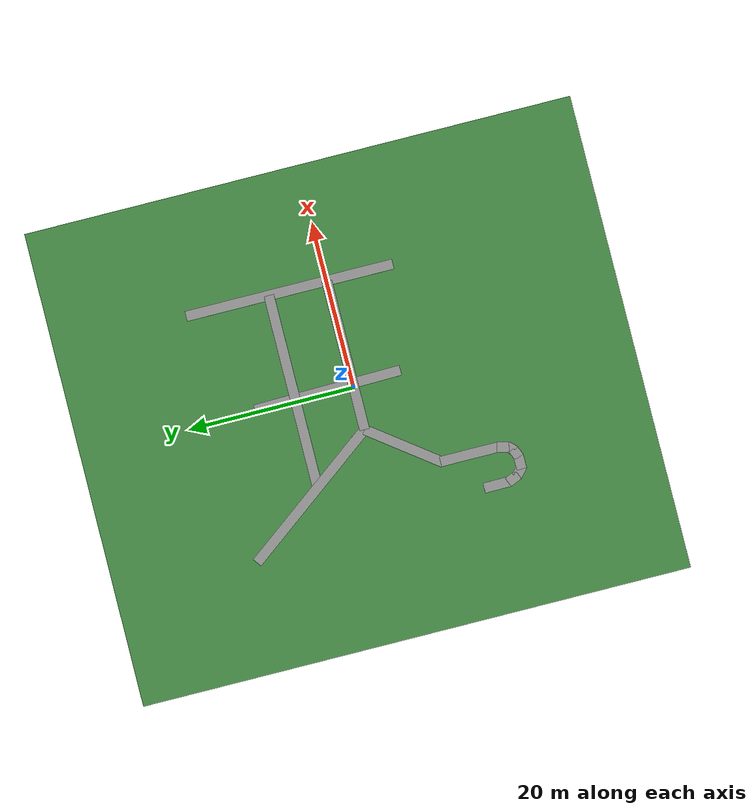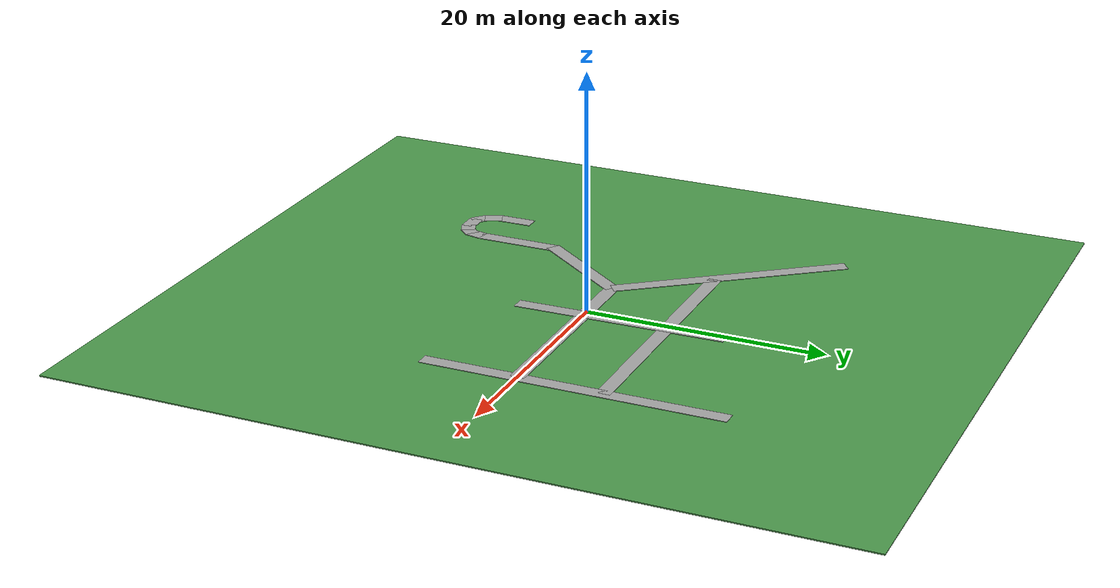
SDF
<?xml version="1.0" ?>
<sdf version="1.8">
  <world name="campus_sidewalk">

    <!-- 1. SIMULATION PHYSICS & SYSTEM PLUGINS     -->
    <physics name="1ms" type="ignored">
      <max_step_size>0.001</max_step_size>
      <real_time_factor>1.0</real_time_factor>
    </physics>

    <plugin filename="ignition-gazebo-physics-system" name="ignition::gazebo::systems::Physics"/>
    <plugin filename="ignition-gazebo-user-commands-system" name="ignition::gazebo::systems::UserCommands"/>
    <plugin filename="ignition-gazebo-scene-broadcaster-system" name="ignition::gazebo::systems::SceneBroadcaster"/>
    <plugin filename="ignition-gazebo-sensors-system" name="ignition::gazebo::systems::Sensors">
      <render_engine>ogre2</render_engine>
    </plugin>

    <!-- 2. LIGHTING & SUN                          -->
    <light type="directional" name="sun">
      <cast_shadows>true</cast_shadows>
      <pose>0 0 10 0 0 0</pose>
      <diffuse>0.8 0.8 0.8 1</diffuse>
      <specular>0.2 0.2 0.2 1</specular>
      <attenuation>
        <range>1000</range>
        <constant>0.9</constant>
        <linear>0.01</linear>
        <quadratic>0.001</quadratic>
      </attenuation>
      <direction>-0.5 0.1 -0.9</direction>
    </light>

    <!-- 3. GRASS MODEL                             -->
    <model name="grass_network">
      <static>true</static>

      <link name="grass_patch_0">
        <pose>-1.5000 0.0000 0.0 0 0 0</pose>
        <collision name="col">
          <pose>0 0 -0.0500 0 0 0</pose>
          <geometry>
            <box><size>57.0000 66.0000 0.1000</size></box>
          </geometry>
        </collision>
        <visual name="vis">
          <pose>0 0 -0.0500 0 0 0</pose>
          <geometry>
            <box><size>57.0000 66.0000 0.1000</size></box>
          </geometry>
          <material>
            <ambient>0.3 0.6 0.3 1</ambient>
            <diffuse>0.3 0.6 0.3 1</diffuse>
          </material>
          <plugin filename="ignition-gazebo-label-system" name="ignition::gazebo::systems::Label">
            <label>2</label> <!-- 2 = Grass -->
          </plugin>
        </visual>
      </link>
    </model>

    <!-- 4. SIDEWALK NETWORK                        -->
    <model name="sidewalk_network">
      <static>true</static>

      <!-- Segment 0: Length 17.69m, Width 1.20m, Height 0.05m -->
      <link name="segment_0">
        <pose>0.7151 -5.7896 0.0 0 0 1.5890</pose>
        <collision name="col">
          <pose>8.8461 0 0.0250 0 0 0</pose>
          <geometry>
            <box><size>17.6923 1.2000 0.0500</size></box>
          </geometry>
        </collision>
        <visual name="vis">
          <pose>8.8461 0 0.0250 0 0 0</pose>
          <geometry>
            <box><size>17.6923 1.2000 0.0500</size></box>
          </geometry>
          <material>
            <ambient>0.65 0.65 0.65 1</ambient>
            <diffuse>0.65 0.65 0.65 1</diffuse>
          </material>
          <plugin filename="ignition-gazebo-label-system" name="ignition::gazebo::systems::Label">
            <label>1</label> <!-- 1 = Sidewalk -->
          </plugin>
        </visual>
      </link>

      <!-- Segment 1: Length 18.00m, Width 1.20m, Height 0.05m -->
      <link name="segment_1">
        <pose>-5.0000 0.0000 0.0 0 0 0.0000</pose>
        <collision name="col">
          <pose>9.0000 0 0.0250 0 0 0</pose>
          <geometry>
            <box><size>18.0000 1.2000 0.0500</size></box>
          </geometry>
        </collision>
        <visual name="vis">
          <pose>9.0000 0 0.0250 0 0 0</pose>
          <geometry>
            <box><size>18.0000 1.2000 0.0500</size></box>
          </geometry>
          <material>
            <ambient>0.65 0.65 0.65 1</ambient>
            <diffuse>0.65 0.65 0.65 1</diffuse>
          </material>
          <plugin filename="ignition-gazebo-label-system" name="ignition::gazebo::systems::Label">
            <label>1</label> <!-- 1 = Sidewalk -->
          </plugin>
        </visual>
      </link>

      <!-- Segment 2: Length 10.00m, Width 1.20m, Height 0.05m -->
      <link name="segment_2">
        <pose>-5.0000 0.0000 0.0 0 0 -2.2143</pose>
        <collision name="col">
          <pose>5.0000 0 0.0250 0 0 0</pose>
          <geometry>
            <box><size>10.0000 1.2000 0.0500</size></box>
          </geometry>
        </collision>
        <visual name="vis">
          <pose>5.0000 0 0.0250 0 0 0</pose>
          <geometry>
            <box><size>10.0000 1.2000 0.0500</size></box>
          </geometry>
          <material>
            <ambient>0.65 0.65 0.65 1</ambient>
            <diffuse>0.65 0.65 0.65 1</diffuse>
          </material>
          <plugin filename="ignition-gazebo-label-system" name="ignition::gazebo::systems::Label">
            <label>1</label> <!-- 1 = Sidewalk -->
          </plugin>
        </visual>
      </link>

      <!-- Segment 3: Length 20.00m, Width 1.20m, Height 0.05m -->
      <link name="segment_3">
        <pose>-5.0000 0.0000 0.0 0 0 2.2143</pose>
        <collision name="col">
          <pose>10.0000 0 0.0250 0 0 0</pose>
          <geometry>
            <box><size>20.0000 1.2000 0.0500</size></box>
          </geometry>
        </collision>
        <visual name="vis">
          <pose>10.0000 0 0.0250 0 0 0</pose>
          <geometry>
            <box><size>20.0000 1.2000 0.0500</size></box>
          </geometry>
          <material>
            <ambient>0.65 0.65 0.65 1</ambient>
            <diffuse>0.65 0.65 0.65 1</diffuse>
          </material>
          <plugin filename="ignition-gazebo-label-system" name="ignition::gazebo::systems::Label">
            <label>1</label> <!-- 1 = Sidewalk -->
          </plugin>
        </visual>
      </link>

      <!-- Segment 4: Length 7.00m, Width 1.20m, Height 0.05m -->
      <link name="segment_4">
        <pose>-10.8249 -14.6701 0.0 0 0 1.5708</pose>
        <collision name="col">
          <pose>3.5000 0 0.0250 0 0 0</pose>
          <geometry>
            <box><size>7.0000 1.2000 0.0500</size></box>
          </geometry>
        </collision>
        <visual name="vis">
          <pose>3.5000 0 0.0250 0 0 0</pose>
          <geometry>
            <box><size>7.0000 1.2000 0.0500</size></box>
          </geometry>
          <material>
            <ambient>0.65 0.65 0.65 1</ambient>
            <diffuse>0.65 0.65 0.65 1</diffuse>
          </material>
          <plugin filename="ignition-gazebo-label-system" name="ignition::gazebo::systems::Label">
            <label>1</label> <!-- 1 = Sidewalk -->
          </plugin>
        </visual>
      </link>

      <!-- Segment 5: Length 23.00m, Width 1.20m, Height 0.05m -->
      <link name="segment_5">
        <pose>-10.0000 7.0000 0.0 0 0 0.0000</pose>
        <collision name="col">
          <pose>11.5000 0 0.0250 0 0 0</pose>
          <geometry>
            <box><size>23.0000 1.2000 0.0500</size></box>
          </geometry>
        </collision>
        <visual name="vis">
          <pose>11.5000 0 0.0250 0 0 0</pose>
          <geometry>
            <box><size>23.0000 1.2000 0.0500</size></box>
          </geometry>
          <material>
            <ambient>0.65 0.65 0.65 1</ambient>
            <diffuse>0.65 0.65 0.65 1</diffuse>
          </material>
          <plugin filename="ignition-gazebo-label-system" name="ignition::gazebo::systems::Label">
            <label>1</label> <!-- 1 = Sidewalk -->
          </plugin>
        </visual>
      </link>

      <!-- Segment 6: Length 25.00m, Width 1.20m, Height 0.05m -->
      <link name="segment_6">
        <pose>13.0000 -8.0000 0.0 0 0 1.5708</pose>
        <collision name="col">
          <pose>12.5000 0 0.0250 0 0 0</pose>
          <geometry>
            <box><size>25.0000 1.2000 0.0500</size></box>
          </geometry>
        </collision>
        <visual name="vis">
          <pose>12.5000 0 0.0250 0 0 0</pose>
          <geometry>
            <box><size>25.0000 1.2000 0.0500</size></box>
          </geometry>
          <material>
            <ambient>0.65 0.65 0.65 1</ambient>
            <diffuse>0.65 0.65 0.65 1</diffuse>
          </material>
          <plugin filename="ignition-gazebo-label-system" name="ignition::gazebo::systems::Label">
            <label>1</label> <!-- 1 = Sidewalk -->
          </plugin>
        </visual>
      </link>

      <!-- Segment 7: Length 1.40m, Width 1.20m, Height 0.05m -->
      <link name="segment_7">
        <pose>-10.8135 -14.5049 0.0 0 0 -1.7819</pose>
        <collision name="col">
          <pose>0.7024 0 0.0250 0 0 0</pose>
          <geometry>
            <box><size>1.4048 1.2000 0.0500</size></box>
          </geometry>
        </collision>
        <visual name="vis">
          <pose>0.7024 0 0.0250 0 0 0</pose>
          <geometry>
            <box><size>1.4048 1.2000 0.0500</size></box>
          </geometry>
          <material>
            <ambient>0.65 0.65 0.65 1</ambient>
            <diffuse>0.65 0.65 0.65 1</diffuse>
          </material>
          <plugin filename="ignition-gazebo-label-system" name="ignition::gazebo::systems::Label">
            <label>1</label> <!-- 1 = Sidewalk -->
          </plugin>
        </visual>
      </link>

      <!-- Segment 8: Length 1.14m, Width 1.20m, Height 0.05m -->
      <link name="segment_8">
        <pose>-10.9770 -15.6162 0.0 0 0 -2.2950</pose>
        <collision name="col">
          <pose>0.5676 0 0.0250 0 0 0</pose>
          <geometry>
            <box><size>1.1353 1.2000 0.0500</size></box>
          </geometry>
        </collision>
        <visual name="vis">
          <pose>0.5676 0 0.0250 0 0 0</pose>
          <geometry>
            <box><size>1.1353 1.2000 0.0500</size></box>
          </geometry>
          <material>
            <ambient>0.65 0.65 0.65 1</ambient>
            <diffuse>0.65 0.65 0.65 1</diffuse>
          </material>
          <plugin filename="ignition-gazebo-label-system" name="ignition::gazebo::systems::Label">
            <label>1</label> <!-- 1 = Sidewalk -->
          </plugin>
        </visual>
      </link>

      <!-- Segment 9: Length 1.18m, Width 1.20m, Height 0.05m -->
      <link name="segment_9">
        <pose>-11.4840 -16.2783 0.0 0 0 -2.7426</pose>
        <collision name="col">
          <pose>0.5917 0 0.0250 0 0 0</pose>
          <geometry>
            <box><size>1.1834 1.2000 0.0500</size></box>
          </geometry>
        </collision>
        <visual name="vis">
          <pose>0.5917 0 0.0250 0 0 0</pose>
          <geometry>
            <box><size>1.1834 1.2000 0.0500</size></box>
          </geometry>
          <material>
            <ambient>0.65 0.65 0.65 1</ambient>
            <diffuse>0.65 0.65 0.65 1</diffuse>
          </material>
          <plugin filename="ignition-gazebo-label-system" name="ignition::gazebo::systems::Label">
            <label>1</label> <!-- 1 = Sidewalk -->
          </plugin>
        </visual>
      </link>

      <!-- Segment 10: Length 1.68m, Width 1.20m, Height 0.05m -->
      <link name="segment_10">
        <pose>-12.3179 -16.6739 0.0 0 0 -3.1289</pose>
        <collision name="col">
          <pose>0.8393 0 0.0250 0 0 0</pose>
          <geometry>
            <box><size>1.6786 1.2000 0.0500</size></box>
          </geometry>
        </collision>
        <visual name="vis">
          <pose>0.8393 0 0.0250 0 0 0</pose>
          <geometry>
            <box><size>1.6786 1.2000 0.0500</size></box>
          </geometry>
          <material>
            <ambient>0.65 0.65 0.65 1</ambient>
            <diffuse>0.65 0.65 0.65 1</diffuse>
          </material>
          <plugin filename="ignition-gazebo-label-system" name="ignition::gazebo::systems::Label">
            <label>1</label> <!-- 1 = Sidewalk -->
          </plugin>
        </visual>
      </link>

      <!-- Segment 11: Length 1.41m, Width 1.20m, Height 0.05m -->
      <link name="segment_11">
        <pose>-13.6329 -16.8556 0.0 0 0 2.4313</pose>
        <collision name="col">
          <pose>0.7050 0 0.0250 0 0 0</pose>
          <geometry>
            <box><size>1.4101 1.2000 0.0500</size></box>
          </geometry>
        </collision>
        <visual name="vis">
          <pose>0.7050 0 0.0250 0 0 0</pose>
          <geometry>
            <box><size>1.4101 1.2000 0.0500</size></box>
          </geometry>
          <material>
            <ambient>0.65 0.65 0.65 1</ambient>
            <diffuse>0.65 0.65 0.65 1</diffuse>
          </material>
          <plugin filename="ignition-gazebo-label-system" name="ignition::gazebo::systems::Label">
            <label>1</label> <!-- 1 = Sidewalk -->
          </plugin>
        </visual>
      </link>

      <!-- Segment 12: Length 1.51m, Width 1.20m, Height 0.05m -->
      <link name="segment_12">
        <pose>-14.5329 -16.1487 0.0 0 0 1.9775</pose>
        <collision name="col">
          <pose>0.7567 0 0.0250 0 0 0</pose>
          <geometry>
            <box><size>1.5133 1.2000 0.0500</size></box>
          </geometry>
        </collision>
        <visual name="vis">
          <pose>0.7567 0 0.0250 0 0 0</pose>
          <geometry>
            <box><size>1.5133 1.2000 0.0500</size></box>
          </geometry>
          <material>
            <ambient>0.65 0.65 0.65 1</ambient>
            <diffuse>0.65 0.65 0.65 1</diffuse>
          </material>
          <plugin filename="ignition-gazebo-label-system" name="ignition::gazebo::systems::Label">
            <label>1</label> <!-- 1 = Sidewalk -->
          </plugin>
        </visual>
      </link>

      <!-- Segment 13: Length 3.12m, Width 1.20m, Height 0.05m -->
      <link name="segment_13">
        <pose>-15.0546 -14.9894 0.0 0 0 1.5811</pose>
        <collision name="col">
          <pose>1.5610 0 0.0250 0 0 0</pose>
          <geometry>
            <box><size>3.1220 1.2000 0.0500</size></box>
          </geometry>
        </collision>
        <visual name="vis">
          <pose>1.5610 0 0.0250 0 0 0</pose>
          <geometry>
            <box><size>3.1220 1.2000 0.0500</size></box>
          </geometry>
          <material>
            <ambient>0.65 0.65 0.65 1</ambient>
            <diffuse>0.65 0.65 0.65 1</diffuse>
          </material>
          <plugin filename="ignition-gazebo-label-system" name="ignition::gazebo::systems::Label">
            <label>1</label> <!-- 1 = Sidewalk -->
          </plugin>
        </visual>
      </link>
    </model>

    <!-- 5. PREDEFINED SPAWN POINTS                 -->
    <!-- Waypoint: node_0 -->
    <frame name="node_0">
      <pose>0.7400 -4.9800 0.1000 0.0000 0.0000 1.5708</pose>
    </frame>

    <!-- Waypoint: node_6 -->
    <frame name="node_6">
      <pose>0.4800 7.1100 0.1000 0.0000 0.0000 1.5708</pose>
    </frame>

    <!-- Waypoint: node_3 -->
    <frame name="node_3">
      <pose>-7.9400 -3.9100 0.1000 0.0000 0.0000 1.0706</pose>
    </frame>

    <!-- Waypoint: node_4 -->
    <frame name="node_4">
      <pose>-9.9200 7.0700 0.1000 0.0000 0.0000 3.1416</pose>
    </frame>

    <!-- Waypoint: node_11 -->
    <frame name="node_11">
      <pose>-16.4000 15.2000 0.1000 0.0000 0.0000 -0.8727</pose>
    </frame>

    <!-- Waypoint: Node_1 -->
    <frame name="Node_1">
      <pose>0.6300 0.0700 0.1000 0.0000 0.0000 3.1416</pose>
    </frame>

    <!-- Waypoint: node_2 -->
    <frame name="node_2">
      <pose>-5.1000 0.0900 0.1000 0.0000 0.0000 -2.2216</pose>
    </frame>

    <!-- Waypoint: node_8 -->
    <frame name="node_8">
      <pose>13.0600 0.1100 0.1000 0.0000 0.0000 0.0000</pose>
    </frame>

    <!-- Waypoint: node_7 -->
    <frame name="node_7">
      <pose>13.0200 7.0000 0.1000 0.0000 0.0000 0.0000</pose>
    </frame>

    <!-- Waypoint: node_5 -->
    <frame name="node_5">
      <pose>0.1500 11.6000 0.1000 0.0000 0.0000 -1.5019</pose>
    </frame>

    <!-- Waypoint: node_10 -->
    <frame name="node_10">
      <pose>13.0700 14.3600 0.1000 0.0000 0.0000 -1.5980</pose>
    </frame>

    <!-- Waypoint: node_9 -->
    <frame name="node_9">
      <pose>13.1000 -6.5400 0.1000 0.0000 0.0000 1.6207</pose>
    </frame>

  </world>
</sdf>
